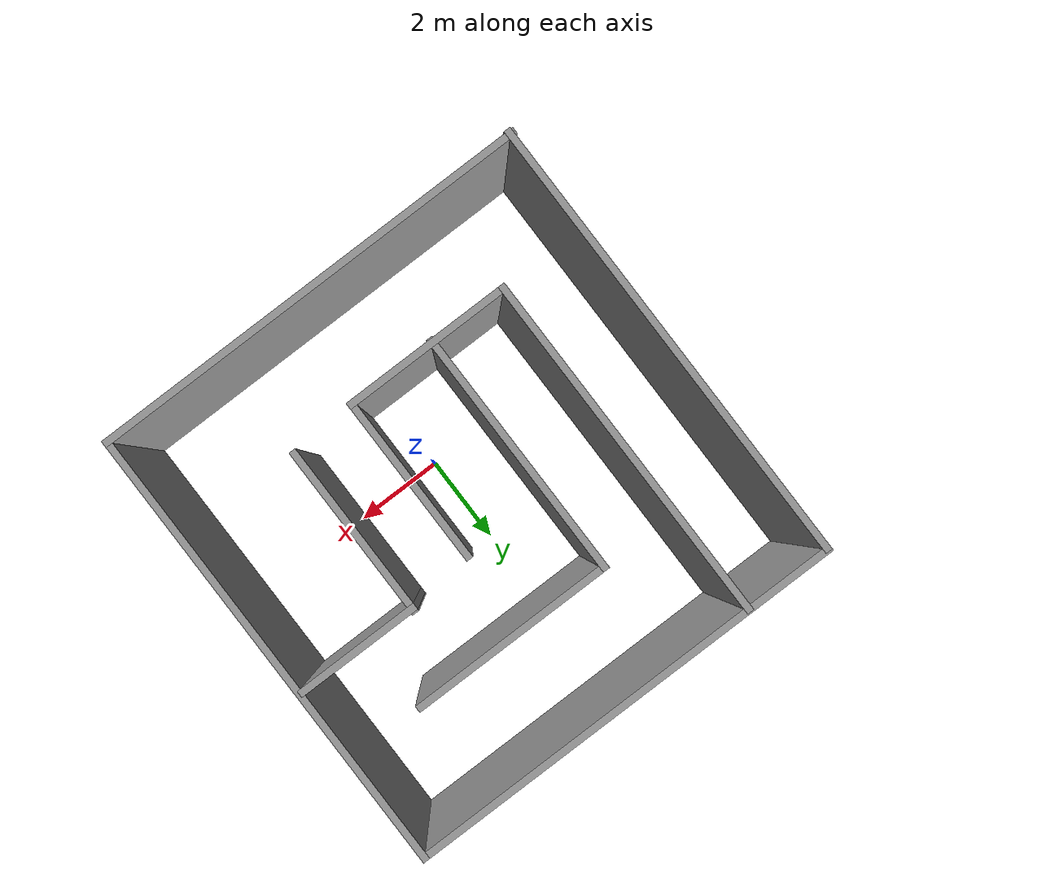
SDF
<?xml version='1.0'?>
<sdf version='1.6'>
  <model name='nick'>
    <pose frame=''>-0.15 0.97751 0 0 -0 0</pose>
    <link name='Wall_10'>
      <collision name='Wall_10_Collision'>
        <geometry>
          <box>
            <size>10 0.15 2.5</size>
          </box>
        </geometry>
        <pose frame=''>0 0 1.25 0 -0 0</pose>
      </collision>
      <visual name='Wall_10_Visual'>
        <pose frame=''>0 0 1.25 0 -0 0</pose>
        <geometry>
          <box>
            <size>10 0.15 2.5</size>
          </box>
        </geometry>
        <material>
          <script>
            <uri>file://media/materials/scripts/gazebo.material</uri>
            <name>Gazebo/Grey</name>
          </script>
          <ambient>1 1 1 1</ambient>
        </material>
        <meta>
          <layer>0</layer>
        </meta>
      </visual>
      <pose frame=''>-4.76502 -0.01749 0 0 -0 -1.5708</pose>
    </link>
    <link name='Wall_12'>
      <collision name='Wall_12_Collision'>
        <geometry>
          <box>
            <size>7.75 0.15 2.5</size>
          </box>
        </geometry>
        <pose frame=''>0 0 1.25 0 -0 0</pose>
      </collision>
      <visual name='Wall_12_Visual'>
        <pose frame=''>0 0 1.25 0 -0 0</pose>
        <geometry>
          <box>
            <size>7.75 0.15 2.5</size>
          </box>
        </geometry>
        <material>
          <script>
            <uri>file://media/materials/scripts/gazebo.material</uri>
            <name>Gazebo/Grey</name>
          </script>
          <ambient>1 1 1 1</ambient>
        </material>
        <meta>
          <layer>0</layer>
        </meta>
      </visual>
      <pose frame=''>-2.8976 1.1185 0 0 -0 -1.5708</pose>
    </link>
    <link name='Wall_13'>
      <collision name='Wall_13_Collision'>
        <geometry>
          <box>
            <size>3.75 0.15 2.5</size>
          </box>
        </geometry>
        <pose frame=''>0 0 1.25 0 -0 0</pose>
      </collision>
      <visual name='Wall_13_Visual'>
        <pose frame=''>0 0 1.25 0 -0 0</pose>
        <geometry>
          <box>
            <size>3.75 0.15 2.5</size>
          </box>
        </geometry>
        <material>
          <script>
            <uri>file://media/materials/scripts/gazebo.material</uri>
            <name>Gazebo/Grey</name>
          </script>
          <ambient>1 1 1 1</ambient>
        </material>
        <meta>
          <layer>0</layer>
        </meta>
      </visual>
      <pose frame=''>-1.0976 -2.6815 0 0 -0 0</pose>
    </link>
    <link name='Wall_14'>
      <collision name='Wall_14_Collision'>
        <geometry>
          <box>
            <size>3.75 0.15 2.5</size>
          </box>
        </geometry>
        <pose frame=''>0 0 1.25 0 -0 0</pose>
      </collision>
      <visual name='Wall_14_Visual'>
        <pose frame=''>0 0 1.25 0 -0 0</pose>
        <geometry>
          <box>
            <size>3.75 0.15 2.5</size>
          </box>
        </geometry>
        <material>
          <script>
            <uri>file://media/materials/scripts/gazebo.material</uri>
            <name>Gazebo/Grey</name>
          </script>
          <ambient>1 1 1 1</ambient>
        </material>
        <meta>
          <layer>0</layer>
        </meta>
      </visual>
      <pose frame=''>0.702404 -0.881499 0 0 -0 1.5708</pose>
    </link>
    <link name='Wall_18'>
      <collision name='Wall_18_Collision'>
        <geometry>
          <box>
            <size>5.5 0.15 2.5</size>
          </box>
        </geometry>
        <pose frame=''>0 0 1.25 0 -0 0</pose>
      </collision>
      <visual name='Wall_18_Visual'>
        <pose frame=''>0 0 1.25 0 -0 0</pose>
        <geometry>
          <box>
            <size>5.5 0.15 2.5</size>
          </box>
        </geometry>
        <material>
          <script>
            <uri>file://media/materials/scripts/gazebo.material</uri>
            <name>Gazebo/Grey</name>
          </script>
          <ambient>1 1 1 1</ambient>
        </material>
        <meta>
          <layer>0</layer>
        </meta>
      </visual>
      <pose frame=''>-1.21855 -0.030207 0 0 -0 -1.5708</pose>
    </link>
    <link name='Wall_2'>
      <collision name='Wall_2_Collision'>
        <geometry>
          <box>
            <size>9.75 0.15 2.5</size>
          </box>
        </geometry>
        <pose frame=''>0 0 1.25 0 -0 0</pose>
      </collision>
      <visual name='Wall_2_Visual'>
        <pose frame=''>0 0 1.25 0 -0 0</pose>
        <geometry>
          <box>
            <size>9.75 0.15 2.5</size>
          </box>
        </geometry>
        <material>
          <script>
            <uri>file://media/materials/scripts/gazebo.material</uri>
            <name>Gazebo/Grey</name>
          </script>
          <ambient>1 1 1 1</ambient>
        </material>
        <meta>
          <layer>0</layer>
        </meta>
      </visual>
      <pose frame=''>-0 -4.90751 0 0 -0 0</pose>
    </link>
    <link name='Wall_20'>
      <collision name='Wall_20_Collision'>
        <geometry>
          <box>
            <size>2.75 0.15 2.5</size>
          </box>
        </geometry>
        <pose frame=''>0 0 1.25 0 -0 0</pose>
      </collision>
      <visual name='Wall_20_Visual'>
        <pose frame=''>0 0 1.25 0 -0 0</pose>
        <geometry>
          <box>
            <size>2.75 0.15 2.5</size>
          </box>
        </geometry>
        <material>
          <script>
            <uri>file://media/materials/scripts/gazebo.material</uri>
            <name>Gazebo/Grey</name>
          </script>
          <ambient>1 1 1 1</ambient>
        </material>
        <meta>
          <layer>0</layer>
        </meta>
      </visual>
      <pose frame=''>3.42807 1.07069 0 0 -0 3.14159</pose>
    </link>
    <link name='Wall_21'>
      <collision name='Wall_21_Collision'>
        <geometry>
          <box>
            <size>3.84466 0.15 2.5</size>
          </box>
        </geometry>
        <pose frame=''>0 0 1.25 0 -0 0</pose>
      </collision>
      <visual name='Wall_21_Visual'>
        <pose frame=''>0 0 1.25 0 -0 0</pose>
        <geometry>
          <box>
            <size>3.84466 0.15 2.5</size>
          </box>
        </geometry>
        <material>
          <script>
            <uri>file://media/materials/scripts/gazebo.material</uri>
            <name>Gazebo/Grey</name>
          </script>
          <ambient>1 1 1 1</ambient>
        </material>
        <meta>
          <layer>0</layer>
        </meta>
      </visual>
      <pose frame=''>2.12807 -0.741664 0 0 -0 -1.5708</pose>
    </link>
    <link name='Wall_23'>
      <collision name='Wall_23_Collision'>
        <geometry>
          <box>
            <size>4.5 0.15 2.5</size>
          </box>
        </geometry>
        <pose frame=''>0 0 1.25 0 -0 0</pose>
      </collision>
      <visual name='Wall_23_Visual'>
        <pose frame=''>0 0 1.25 0 -0 0</pose>
        <geometry>
          <box>
            <size>4.5 0.15 2.5</size>
          </box>
        </geometry>
        <material>
          <script>
            <uri>file://media/materials/scripts/gazebo.material</uri>
            <name>Gazebo/Grey</name>
          </script>
          <ambient>1 1 1 1</ambient>
        </material>
        <meta>
          <layer>0</layer>
        </meta>
      </visual>
      <pose frame=''>0.95645 2.64479 0 0 -0 0</pose>
    </link>
    <link name='Wall_8'>
      <collision name='Wall_8_Collision'>
        <geometry>
          <box>
            <size>10 0.15 2.5</size>
          </box>
        </geometry>
        <pose frame=''>0 0 1.25 0 -0 0</pose>
      </collision>
      <visual name='Wall_8_Visual'>
        <pose frame=''>0 0 1.25 0 -0 0</pose>
        <geometry>
          <box>
            <size>10 0.15 2.5</size>
          </box>
        </geometry>
        <material>
          <script>
            <uri>file://media/materials/scripts/gazebo.material</uri>
            <name>Gazebo/Grey</name>
          </script>
          <ambient>1 1 1 1</ambient>
        </material>
        <meta>
          <layer>0</layer>
        </meta>
      </visual>
      <pose frame=''>4.8 0.01749 0 0 -0 1.5708</pose>
    </link>
    <link name='Wall_9'>
      <collision name='Wall_9_Collision'>
        <geometry>
          <box>
            <size>9.71502 0.15 2.5</size>
          </box>
        </geometry>
        <pose frame=''>0 0 1.25 0 -0 0</pose>
      </collision>
      <visual name='Wall_9_Visual'>
        <pose frame=''>0 0 1.25 0 -0 0</pose>
        <geometry>
          <box>
            <size>9.71502 0.15 2.5</size>
          </box>
        </geometry>
        <material>
          <script>
            <uri>file://media/materials/scripts/gazebo.material</uri>
            <name>Gazebo/Grey</name>
          </script>
          <ambient>1 1 1 1</ambient>
        </material>
        <meta>
          <layer>0</layer>
        </meta>
      </visual>
      <pose frame=''>0.01749 4.94249 0 0 -0 3.14159</pose>
    </link>
    <static>1</static>
  </model>
</sdf>
